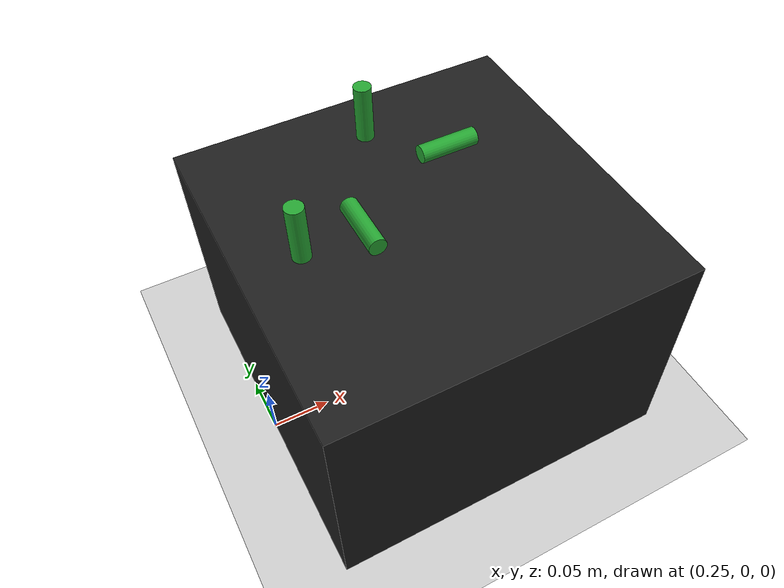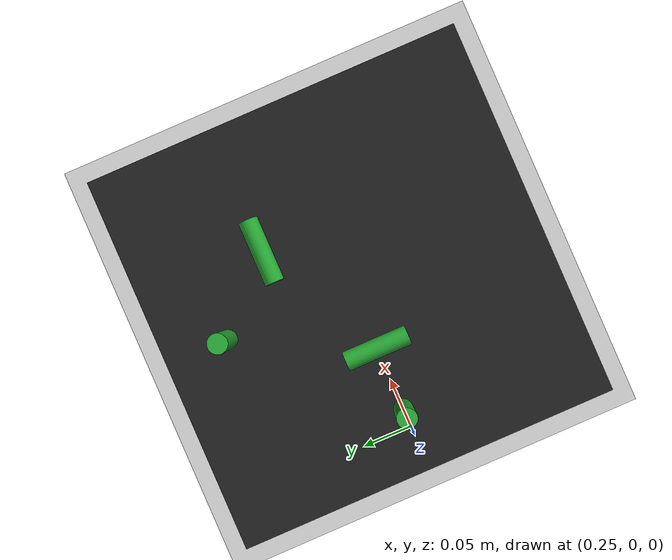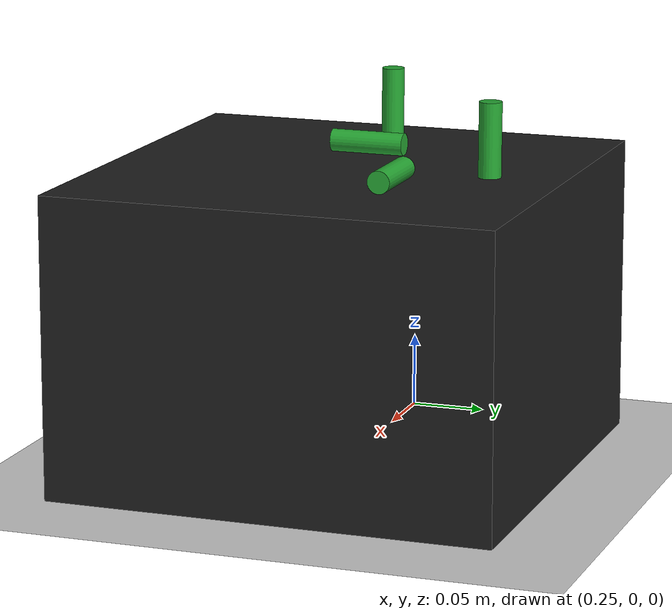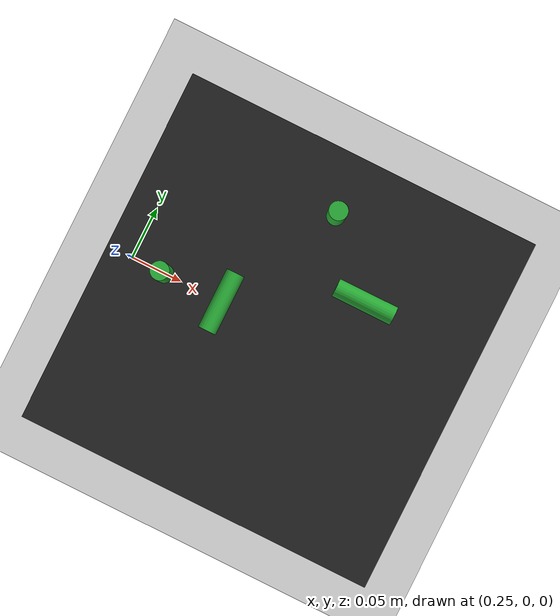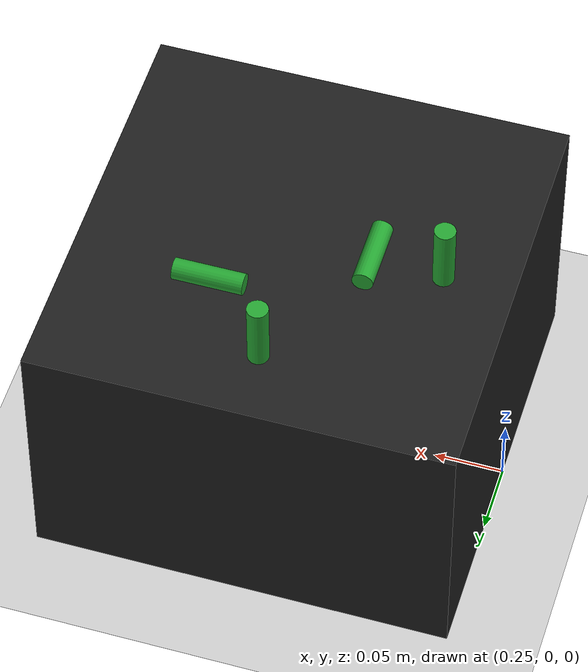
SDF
<sdf version="1.6">
 <world name="empty">
  <light name="sun" type="directional">
   <pose>0 0 10 0 -0 0</pose>
   <diffuse>0.8 0.8 0.8 1</diffuse>
   <specular>0.2 0.2 0.2 1</specular>
   <attenuation>
    <range>1000</range>
    <constant>0.9</constant>
    <linear>0.01</linear>
    <quadratic>0.001</quadratic>
   </attenuation>
   <direction>-0.5 0.1 -0.9</direction>
  </light>
  <model name="ground_plane">
   <static>1</static>
   <link name="link">
    <collision name="collision">
     <geometry><plane><normal>0 0 1</normal><size>100 100</size></plane></geometry>
     <surface><friction><ode><mu>100</mu><mu2>50</mu2></ode></friction></surface>
    </collision>
    <visual name="visual">
     <cast_shadows>0</cast_shadows>
     <geometry><plane><normal>0 0 1</normal><size>100 100</size></plane></geometry>
     <material>
      <script><uri>file://media/materials/scripts/gazebo.material</uri><name>Gazebo/Grey</name></script>
     </material>
    </visual>
   </link>
  </model>
  <physics name="default_physics" default="0" type="ode">
   <max_step_size>0.001</max_step_size>
   <real_time_factor>1</real_time_factor>
   <real_time_update_rate>1000</real_time_update_rate>
  </physics>
  <model name="coke_can_box_model">
   <pose>0.300059 0.000126 0.224509 -0.005151 0.002394 1e-06</pose>
   <link name="coke_can">
    <inertial>
     <mass>1e-05</mass>
     <inertia><ixx>0.00016</ixx><ixy>0</ixy><ixz>0</ixz><iyy>0.00016</iyy><iyz>0</iyz><izz>6e-05</izz></inertia>
    </inertial>
    <collision name="collision">
     <geometry><cylinder><radius>0.0075</radius><length>0.05</length></cylinder></geometry>
     <surface>
      <friction><ode><mu>100000</mu><mu2>100000</mu2></ode></friction>
      <contact><ode><kp>1e+07</kp><kd>1</kd><min_depth>0.001</min_depth><max_vel>0.1</max_vel></ode></contact>
     </surface>
    </collision>
    <visual name="visual">
     <geometry><cylinder><radius>0.0075</radius><length>0.05</length></cylinder></geometry>
     <material>
      <script><name>Gazebo/Green</name><uri>file://media/materials/scripts/gazebo.material</uri></script>
     </material>
    </visual>
   </link>
  </model>
  <model name="coke_can_box_model_2">
   <pose>0.400041 0.100142 0.22451 -0.005789 0.001666 -4e-06</pose>
   <link name="coke_can">
    <inertial>
     <mass>1e-05</mass>
     <inertia><ixx>0.00016</ixx><ixy>0</ixy><ixz>0</ixz><iyy>0.00016</iyy><iyz>0</iyz><izz>6e-05</izz></inertia>
    </inertial>
    <collision name="collision">
     <geometry><cylinder><radius>0.0075</radius><length>0.05</length></cylinder></geometry>
     <surface>
      <friction><ode><mu>100000</mu><mu2>100000</mu2></ode></friction>
      <contact><ode><kp>1e+07</kp><kd>1</kd><min_depth>0.001</min_depth><max_vel>0.1</max_vel></ode></contact>
     </surface>
    </collision>
    <visual name="visual">
     <geometry><cylinder><radius>0.0075</radius><length>0.05</length></cylinder></geometry>
     <material>
      <script><name>Gazebo/Green</name><uri>file://media/materials/scripts/gazebo.material</uri></script>
     </material>
    </visual>
   </link>
  </model>
  <model name="coke_can_box_model_3">
   <pose>0.44999 0.05 0.2075 -1.54435 1.5623 -1.54426</pose>
   <link name="coke_can">
    <inertial>
     <mass>1e-05</mass>
     <inertia><ixx>0.00016</ixx><ixy>0</ixy><ixz>0</ixz><iyy>0.00016</iyy><iyz>0</iyz><izz>6e-05</izz></inertia>
    </inertial>
    <collision name="collision">
     <geometry><cylinder><radius>0.0075</radius><length>0.05</length></cylinder></geometry>
     <surface>
      <friction><ode><mu>100000</mu><mu2>100000</mu2></ode></friction>
      <contact><ode><kp>1e+07</kp><kd>1</kd><min_depth>0.001</min_depth><max_vel>0.1</max_vel></ode></contact>
     </surface>
    </collision>
    <visual name="visual">
     <geometry><cylinder><radius>0.0075</radius><length>0.05</length></cylinder></geometry>
     <material>
      <script><name>Gazebo/Green</name><uri>file://media/materials/scripts/gazebo.material</uri></script>
     </material>
    </visual>
   </link>
  </model>
  <model name="coke_can_box_model_4">
   <pose>0.35 1.4e-05 0.207256 1.56814 -0 0</pose>
   <link name="coke_can">
    <inertial>
     <mass>1e-05</mass>
     <inertia><ixx>0.00016</ixx><ixy>0</ixy><ixz>0</ixz><iyy>0.00016</iyy><iyz>0</iyz><izz>6e-05</izz></inertia>
    </inertial>
    <collision name="collision">
     <geometry><cylinder><radius>0.0075</radius><length>0.05</length></cylinder></geometry>
     <surface>
      <friction><ode><mu>100000</mu><mu2>100000</mu2></ode></friction>
      <contact><ode><kp>1e+07</kp><kd>1</kd><min_depth>0.001</min_depth><max_vel>0.1</max_vel></ode></contact>
     </surface>
    </collision>
    <visual name="visual">
     <geometry><cylinder><radius>0.0075</radius><length>0.05</length></cylinder></geometry>
     <material>
      <script><name>Gazebo/Green</name><uri>file://media/materials/scripts/gazebo.material</uri></script>
     </material>
    </visual>
   </link>
  </model>
  <model name="table_box_model">
   <static>1</static>
   <pose>0.4 0 0.1 0 -0 1.5708</pose>
   <link name="table_box_link">
    <inertial>
     <mass>1</mass>
     <inertia>
      <ixx>0.166667</ixx>
      <ixy>0</ixy>
      <ixz>0</ixz>
      <iyy>0.166667</iyy>
      <iyz>0</iyz>
      <izz>0.166667</izz>
     </inertia>
    </inertial>
    <collision name="collision">
     <geometry><box><size>0.3 0.3 0.2</size></box></geometry>
     <surface><friction><ode><mu>0.6</mu><mu2>0.6</mu2></ode></friction></surface>
    </collision>
    <visual name="visual">
     <geometry><box><size>0.3 0.3 0.2</size></box></geometry>
     <material>
      <script><name>Gazebo/Black</name><uri>file://media/materials/scripts/gazebo.material</uri></script>
     </material>
    </visual>
   </link>
  </model>
  <gravity>0 0 -9.81</gravity>
  <magnetic_field>6e-06 2.3e-05 -4.2e-05</magnetic_field>
  <atmosphere type="adiabatic"/>
  <scene><ambient>0.4 0.4 0.4 1</ambient><background>0.7 0.7 0.7 1</background><shadows>1</shadows></scene>
  <spherical_coordinates>
   <surface_model>EARTH_WGS84</surface_model>
   <latitude_deg>0</latitude_deg>
   <longitude_deg>0</longitude_deg>
   <elevation>0</elevation>
   <heading_deg>0</heading_deg>
  </spherical_coordinates>
 </world>
</sdf>
